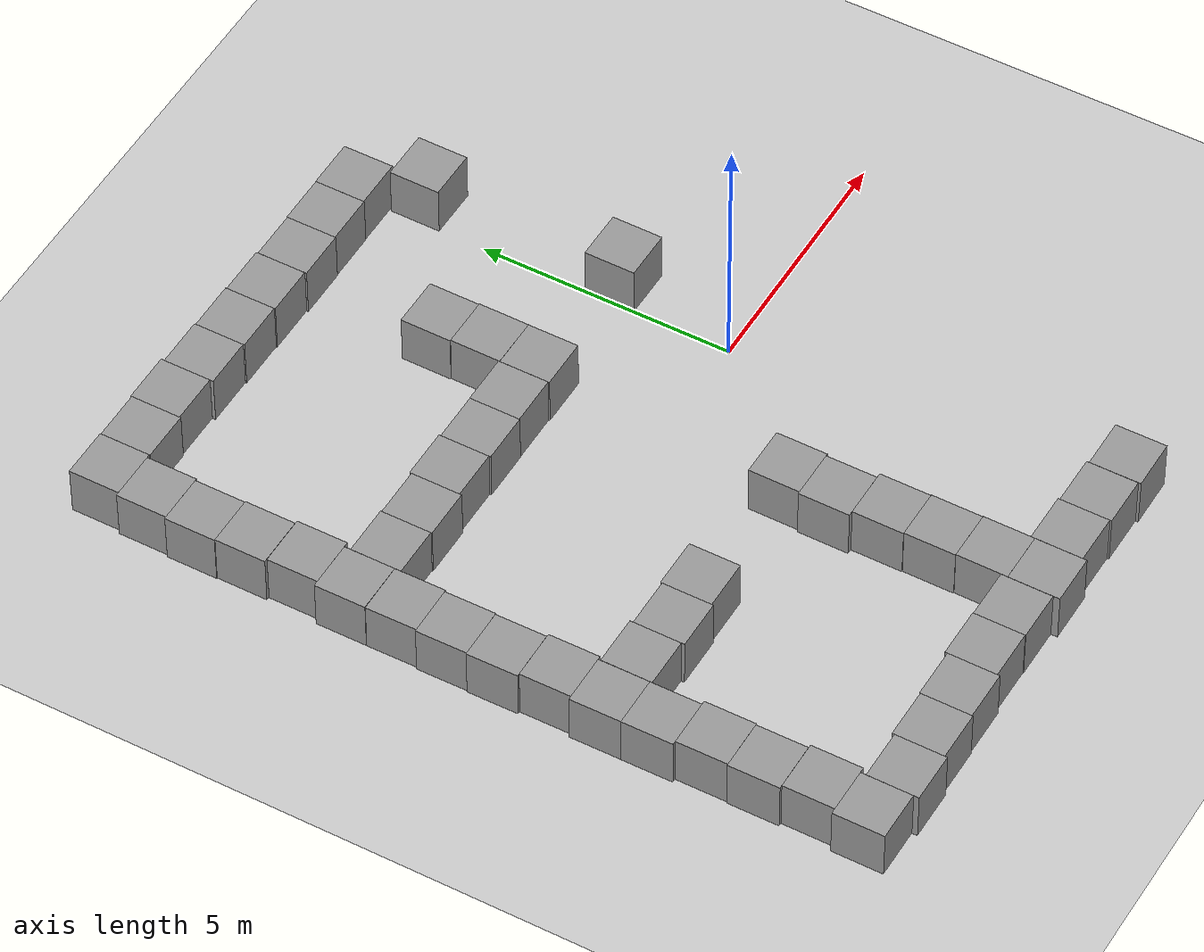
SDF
<sdf version="1.7">
 <world name="default">
  <model name="ground_plane">
   <static>1</static>
   <link name="link">
    <collision name="collision">
     <geometry><plane><normal>0 0 1</normal><size>100 100</size></plane></geometry>
     <surface>
      <contact><collide_bitmask>65535</collide_bitmask></contact>
      <friction><ode><mu>100</mu><mu2>50</mu2></ode></friction>
     </surface>
    </collision>
    <visual name="visual">
     <cast_shadows>0</cast_shadows>
     <geometry><plane><normal>0 0 1</normal><size>100 100</size></plane></geometry>
     <material>
      <script><uri>file://media/materials/scripts/gazebo.material</uri><name>Gazebo/Grey</name></script>
     </material>
    </visual>
   </link>
  </model>
  <model name="unit_box">
   <pose>-1.48346 -7.49248 0.499995 1e-05 -0 -0.004181</pose>
   <link name="link">
    <inertial>
     <mass>1</mass>
     <inertia>
      <ixx>0.166667</ixx>
      <ixy>0</ixy>
      <ixz>0</ixz>
      <iyy>0.166667</iyy>
      <iyz>0</iyz>
      <izz>0.166667</izz>
     </inertia>
    </inertial>
    <collision name="collision"><geometry><box><size>1 1 1</size></box></geometry></collision>
    <visual name="visual">
     <geometry><box><size>1 1 1</size></box></geometry>
     <material>
      <script><name>Gazebo/Grey</name><uri>file://media/materials/scripts/gazebo.material</uri></script>
     </material>
    </visual>
   </link>
  </model>
  <model name="unit_box_clone">
   <pose>-0.483452 -7.53028 0.499995 1e-05 0 -0.003876</pose>
   <link name="link">
    <inertial>
     <mass>1</mass>
     <inertia>
      <ixx>0.166667</ixx>
      <ixy>0</ixy>
      <ixz>0</ixz>
      <iyy>0.166667</iyy>
      <iyz>0</iyz>
      <izz>0.166667</izz>
     </inertia>
    </inertial>
    <collision name="collision"><geometry><box><size>1 1 1</size></box></geometry></collision>
    <visual name="visual">
     <geometry><box><size>1 1 1</size></box></geometry>
     <material>
      <script><name>Gazebo/Grey</name><uri>file://media/materials/scripts/gazebo.material</uri></script>
     </material>
    </visual>
   </link>
  </model>
  <model name="unit_box_clone_0">
   <pose>0.519092 -7.5801 0.499995 -0 -1e-05 0.001579</pose>
   <link name="link">
    <inertial>
     <mass>1</mass>
     <inertia>
      <ixx>0.166667</ixx>
      <ixy>0</ixy>
      <ixz>0</ixz>
      <iyy>0.166667</iyy>
      <iyz>0</iyz>
      <izz>0.166667</izz>
     </inertia>
    </inertial>
    <collision name="collision"><geometry><box><size>1 1 1</size></box></geometry></collision>
    <visual name="visual">
     <geometry><box><size>1 1 1</size></box></geometry>
     <material>
      <script><name>Gazebo/Grey</name><uri>file://media/materials/scripts/gazebo.material</uri></script>
     </material>
    </visual>
   </link>
  </model>
  <model name="unit_box_clone_24">
   <pose>-0.337977 7.47713 0.499995 -1e-05 -0 0.00065</pose>
   <link name="link">
    <inertial>
     <mass>1</mass>
     <inertia>
      <ixx>0.166667</ixx>
      <ixy>0</ixy>
      <ixz>0</ixz>
      <iyy>0.166667</iyy>
      <iyz>0</iyz>
      <izz>0.166667</izz>
     </inertia>
    </inertial>
    <collision name="collision"><geometry><box><size>1 1 1</size></box></geometry></collision>
    <visual name="visual">
     <geometry><box><size>1 1 1</size></box></geometry>
     <material>
      <script><name>Gazebo/Grey</name><uri>file://media/materials/scripts/gazebo.material</uri></script>
     </material>
    </visual>
   </link>
  </model>
  <model name="unit_box_clone_25">
   <pose>-1.33802 7.46853 0.5 0 -0 0.000596</pose>
   <link name="link">
    <inertial>
     <mass>1</mass>
     <inertia>
      <ixx>0.166667</ixx>
      <ixy>0</ixy>
      <ixz>0</ixz>
      <iyy>0.166667</iyy>
      <iyz>0</iyz>
      <izz>0.166667</izz>
     </inertia>
    </inertial>
    <collision name="collision"><geometry><box><size>1 1 1</size></box></geometry></collision>
    <visual name="visual">
     <geometry><box><size>1 1 1</size></box></geometry>
     <material>
      <script><name>Gazebo/Grey</name><uri>file://media/materials/scripts/gazebo.material</uri></script>
     </material>
    </visual>
   </link>
  </model>
  <model name="unit_box_clone_26">
   <pose>-2.33802 7.4561 0.5 0 -0 0.000584</pose>
   <link name="link">
    <inertial>
     <mass>1</mass>
     <inertia>
      <ixx>0.166667</ixx>
      <ixy>0</ixy>
      <ixz>0</ixz>
      <iyy>0.166667</iyy>
      <iyz>0</iyz>
      <izz>0.166667</izz>
     </inertia>
    </inertial>
    <collision name="collision"><geometry><box><size>1 1 1</size></box></geometry></collision>
    <visual name="visual">
     <geometry><box><size>1 1 1</size></box></geometry>
     <material>
      <script><name>Gazebo/Grey</name><uri>file://media/materials/scripts/gazebo.material</uri></script>
     </material>
    </visual>
   </link>
  </model>
  <model name="unit_box_clone_27">
   <pose>-3.33817 7.49082 0.5 0 -0 0.000326</pose>
   <link name="link">
    <inertial>
     <mass>1</mass>
     <inertia>
      <ixx>0.166667</ixx>
      <ixy>0</ixy>
      <ixz>0</ixz>
      <iyy>0.166667</iyy>
      <iyz>0</iyz>
      <izz>0.166667</izz>
     </inertia>
    </inertial>
    <collision name="collision"><geometry><box><size>1 1 1</size></box></geometry></collision>
    <visual name="visual">
     <geometry><box><size>1 1 1</size></box></geometry>
     <material>
      <script><name>Gazebo/Grey</name><uri>file://media/materials/scripts/gazebo.material</uri></script>
     </material>
    </visual>
   </link>
  </model>
  <model name="unit_box_clone_28">
   <pose>-4.33829 7.51118 0.5 0 -0 8.9e-05</pose>
   <link name="link">
    <inertial>
     <mass>1</mass>
     <inertia>
      <ixx>0.166667</ixx>
      <ixy>0</ixy>
      <ixz>0</ixz>
      <iyy>0.166667</iyy>
      <iyz>0</iyz>
      <izz>0.166667</izz>
     </inertia>
    </inertial>
    <collision name="collision"><geometry><box><size>1 1 1</size></box></geometry></collision>
    <visual name="visual">
     <geometry><box><size>1 1 1</size></box></geometry>
     <material>
      <script><name>Gazebo/Grey</name><uri>file://media/materials/scripts/gazebo.material</uri></script>
     </material>
    </visual>
   </link>
  </model>
  <model name="unit_box_clone_29">
   <pose>-5.3383 7.53597 0.499995 1e-05 0 6.8e-05</pose>
   <link name="link">
    <inertial>
     <mass>1</mass>
     <inertia>
      <ixx>0.166667</ixx>
      <ixy>0</ixy>
      <ixz>0</ixz>
      <iyy>0.166667</iyy>
      <iyz>0</iyz>
      <izz>0.166667</izz>
     </inertia>
    </inertial>
    <collision name="collision"><geometry><box><size>1 1 1</size></box></geometry></collision>
    <visual name="visual">
     <geometry><box><size>1 1 1</size></box></geometry>
     <material>
      <script><name>Gazebo/Grey</name><uri>file://media/materials/scripts/gazebo.material</uri></script>
     </material>
    </visual>
   </link>
  </model>
  <model name="unit_box_clone_30">
   <pose>-6.33833 7.60037 0.499995 1e-05 -0 1.4e-05</pose>
   <link name="link">
    <inertial>
     <mass>1</mass>
     <inertia>
      <ixx>0.166667</ixx>
      <ixy>0</ixy>
      <ixz>0</ixz>
      <iyy>0.166667</iyy>
      <iyz>0</iyz>
      <izz>0.166667</izz>
     </inertia>
    </inertial>
    <collision name="collision"><geometry><box><size>1 1 1</size></box></geometry></collision>
    <visual name="visual">
     <geometry><box><size>1 1 1</size></box></geometry>
     <material>
      <script><name>Gazebo/Grey</name><uri>file://media/materials/scripts/gazebo.material</uri></script>
     </material>
    </visual>
   </link>
  </model>
  <model name="unit_box_clone_31">
   <pose>-7.3384 7.57702 0.499995 0 -1e-05 -9.3e-05</pose>
   <link name="link">
    <inertial>
     <mass>1</mass>
     <inertia>
      <ixx>0.166667</ixx>
      <ixy>0</ixy>
      <ixz>0</ixz>
      <iyy>0.166667</iyy>
      <iyz>0</iyz>
      <izz>0.166667</izz>
     </inertia>
    </inertial>
    <collision name="collision"><geometry><box><size>1 1 1</size></box></geometry></collision>
    <visual name="visual">
     <geometry><box><size>1 1 1</size></box></geometry>
     <material>
      <script><name>Gazebo/Grey</name><uri>file://media/materials/scripts/gazebo.material</uri></script>
     </material>
    </visual>
   </link>
  </model>
  <model name="unit_box_clone_32">
   <pose>-8.33868 7.5929 0.499995 0 1e-05 -0.000708</pose>
   <link name="link">
    <inertial>
     <mass>1</mass>
     <inertia>
      <ixx>0.166667</ixx>
      <ixy>0</ixy>
      <ixz>0</ixz>
      <iyy>0.166667</iyy>
      <iyz>0</iyz>
      <izz>0.166667</izz>
     </inertia>
    </inertial>
    <collision name="collision"><geometry><box><size>1 1 1</size></box></geometry></collision>
    <visual name="visual">
     <geometry><box><size>1 1 1</size></box></geometry>
     <material>
      <script><name>Gazebo/Grey</name><uri>file://media/materials/scripts/gazebo.material</uri></script>
     </material>
    </visual>
   </link>
  </model>
  <model name="unit_box_clone_33">
   <pose>-8.40776 6.59292 0.499995 0 1e-05 -0.000748</pose>
   <link name="link">
    <inertial>
     <mass>1</mass>
     <inertia>
      <ixx>0.166667</ixx>
      <ixy>0</ixy>
      <ixz>0</ixz>
      <iyy>0.166667</iyy>
      <iyz>0</iyz>
      <izz>0.166667</izz>
     </inertia>
    </inertial>
    <collision name="collision"><geometry><box><size>1 1 1</size></box></geometry></collision>
    <visual name="visual">
     <geometry><box><size>1 1 1</size></box></geometry>
     <material>
      <script><name>Gazebo/Grey</name><uri>file://media/materials/scripts/gazebo.material</uri></script>
     </material>
    </visual>
   </link>
  </model>
  <model name="unit_box_clone_34">
   <pose>-8.44819 5.59252 0.5 -0 -0 -0.001683</pose>
   <link name="link">
    <inertial>
     <mass>1</mass>
     <inertia>
      <ixx>0.166667</ixx>
      <ixy>0</ixy>
      <ixz>0</ixz>
      <iyy>0.166667</iyy>
      <iyz>0</iyz>
      <izz>0.166667</izz>
     </inertia>
    </inertial>
    <collision name="collision"><geometry><box><size>1 1 1</size></box></geometry></collision>
    <visual name="visual">
     <geometry><box><size>1 1 1</size></box></geometry>
     <material>
      <script><name>Gazebo/Grey</name><uri>file://media/materials/scripts/gazebo.material</uri></script>
     </material>
    </visual>
   </link>
  </model>
  <model name="unit_box_clone_35">
   <pose>-8.43292 4.59249 0.499995 0 1e-05 -0.001692</pose>
   <link name="link">
    <inertial>
     <mass>1</mass>
     <inertia>
      <ixx>0.166667</ixx>
      <ixy>0</ixy>
      <ixz>0</ixz>
      <iyy>0.166667</iyy>
      <iyz>0</iyz>
      <izz>0.166667</izz>
     </inertia>
    </inertial>
    <collision name="collision"><geometry><box><size>1 1 1</size></box></geometry></collision>
    <visual name="visual">
     <geometry><box><size>1 1 1</size></box></geometry>
     <material>
      <script><name>Gazebo/Grey</name><uri>file://media/materials/scripts/gazebo.material</uri></script>
     </material>
    </visual>
   </link>
  </model>
  <model name="unit_box_clone_36">
   <pose>-8.37185 3.5869 0.499995 1e-05 -0 0.002115</pose>
   <link name="link">
    <inertial>
     <mass>1</mass>
     <inertia>
      <ixx>0.166667</ixx>
      <ixy>0</ixy>
      <ixz>0</ixz>
      <iyy>0.166667</iyy>
      <iyz>0</iyz>
      <izz>0.166667</izz>
     </inertia>
    </inertial>
    <collision name="collision"><geometry><box><size>1 1 1</size></box></geometry></collision>
    <visual name="visual">
     <geometry><box><size>1 1 1</size></box></geometry>
     <material>
      <script><name>Gazebo/Grey</name><uri>file://media/materials/scripts/gazebo.material</uri></script>
     </material>
    </visual>
   </link>
  </model>
  <model name="unit_box_clone_37">
   <pose>-8.4713 2.58632 0.499995 0 -1e-05 0.002251</pose>
   <link name="link">
    <inertial>
     <mass>1</mass>
     <inertia>
      <ixx>0.166667</ixx>
      <ixy>0</ixy>
      <ixz>0</ixz>
      <iyy>0.166667</iyy>
      <iyz>0</iyz>
      <izz>0.166667</izz>
     </inertia>
    </inertial>
    <collision name="collision"><geometry><box><size>1 1 1</size></box></geometry></collision>
    <visual name="visual">
     <geometry><box><size>1 1 1</size></box></geometry>
     <material>
      <script><name>Gazebo/Grey</name><uri>file://media/materials/scripts/gazebo.material</uri></script>
     </material>
    </visual>
   </link>
  </model>
  <model name="unit_box_clone_38">
   <pose>-8.46655 1.5814 0.499995 1e-05 -0 0.009421</pose>
   <link name="link">
    <inertial>
     <mass>1</mass>
     <inertia>
      <ixx>0.166667</ixx>
      <ixy>0</ixy>
      <ixz>0</ixz>
      <iyy>0.166667</iyy>
      <iyz>0</iyz>
      <izz>0.166667</izz>
     </inertia>
    </inertial>
    <collision name="collision"><geometry><box><size>1 1 1</size></box></geometry></collision>
    <visual name="visual">
     <geometry><box><size>1 1 1</size></box></geometry>
     <material>
      <script><name>Gazebo/Grey</name><uri>file://media/materials/scripts/gazebo.material</uri></script>
     </material>
    </visual>
   </link>
  </model>
  <model name="unit_box_clone_39">
   <pose>-8.49089 0.58107 0.499995 -1e-05 0 0.009286</pose>
   <link name="link">
    <inertial>
     <mass>1</mass>
     <inertia>
      <ixx>0.166667</ixx>
      <ixy>0</ixy>
      <ixz>0</ixz>
      <iyy>0.166667</iyy>
      <iyz>0</iyz>
      <izz>0.166667</izz>
     </inertia>
    </inertial>
    <collision name="collision"><geometry><box><size>1 1 1</size></box></geometry></collision>
    <visual name="visual">
     <geometry><box><size>1 1 1</size></box></geometry>
     <material>
      <script><name>Gazebo/Grey</name><uri>file://media/materials/scripts/gazebo.material</uri></script>
     </material>
    </visual>
   </link>
  </model>
  <model name="unit_box_clone_40">
   <pose>-8.50342 -0.419544 0.499995 1e-05 0 0.008373</pose>
   <link name="link">
    <inertial>
     <mass>1</mass>
     <inertia>
      <ixx>0.166667</ixx>
      <ixy>0</ixy>
      <ixz>0</ixz>
      <iyy>0.166667</iyy>
      <iyz>0</iyz>
      <izz>0.166667</izz>
     </inertia>
    </inertial>
    <collision name="collision"><geometry><box><size>1 1 1</size></box></geometry></collision>
    <visual name="visual">
     <geometry><box><size>1 1 1</size></box></geometry>
     <material>
      <script><name>Gazebo/Grey</name><uri>file://media/materials/scripts/gazebo.material</uri></script>
     </material>
    </visual>
   </link>
  </model>
  <model name="unit_box_clone_41">
   <pose>-8.44531 -1.42065 0.499995 0 1e-05 0.005312</pose>
   <link name="link">
    <inertial>
     <mass>1</mass>
     <inertia>
      <ixx>0.166667</ixx>
      <ixy>0</ixy>
      <ixz>0</ixz>
      <iyy>0.166667</iyy>
      <iyz>0</iyz>
      <izz>0.166667</izz>
     </inertia>
    </inertial>
    <collision name="collision"><geometry><box><size>1 1 1</size></box></geometry></collision>
    <visual name="visual">
     <geometry><box><size>1 1 1</size></box></geometry>
     <material>
      <script><name>Gazebo/Grey</name><uri>file://media/materials/scripts/gazebo.material</uri></script>
     </material>
    </visual>
   </link>
  </model>
  <model name="unit_box_clone_42">
   <pose>-8.50894 -2.42112 0.499995 0 -1e-05 0.005258</pose>
   <link name="link">
    <inertial>
     <mass>1</mass>
     <inertia>
      <ixx>0.166667</ixx>
      <ixy>0</ixy>
      <ixz>0</ixz>
      <iyy>0.166667</iyy>
      <iyz>0</iyz>
      <izz>0.166667</izz>
     </inertia>
    </inertial>
    <collision name="collision"><geometry><box><size>1 1 1</size></box></geometry></collision>
    <visual name="visual">
     <geometry><box><size>1 1 1</size></box></geometry>
     <material>
      <script><name>Gazebo/Grey</name><uri>file://media/materials/scripts/gazebo.material</uri></script>
     </material>
    </visual>
   </link>
  </model>
  <model name="unit_box_clone_43">
   <pose>-8.50524 -3.42113 0.499995 -0 -1e-05 0.005234</pose>
   <link name="link">
    <inertial>
     <mass>1</mass>
     <inertia>
      <ixx>0.166667</ixx>
      <ixy>0</ixy>
      <ixz>0</ixz>
      <iyy>0.166667</iyy>
      <iyz>0</iyz>
      <izz>0.166667</izz>
     </inertia>
    </inertial>
    <collision name="collision"><geometry><box><size>1 1 1</size></box></geometry></collision>
    <visual name="visual">
     <geometry><box><size>1 1 1</size></box></geometry>
     <material>
      <script><name>Gazebo/Grey</name><uri>file://media/materials/scripts/gazebo.material</uri></script>
     </material>
    </visual>
   </link>
  </model>
  <model name="unit_box_clone_44">
   <pose>-8.42681 -4.42082 0.499995 -0 -1e-05 0.005078</pose>
   <link name="link">
    <inertial>
     <mass>1</mass>
     <inertia>
      <ixx>0.166667</ixx>
      <ixy>0</ixy>
      <ixz>0</ixz>
      <iyy>0.166667</iyy>
      <iyz>0</iyz>
      <izz>0.166667</izz>
     </inertia>
    </inertial>
    <collision name="collision"><geometry><box><size>1 1 1</size></box></geometry></collision>
    <visual name="visual">
     <geometry><box><size>1 1 1</size></box></geometry>
     <material>
      <script><name>Gazebo/Grey</name><uri>file://media/materials/scripts/gazebo.material</uri></script>
     </material>
    </visual>
   </link>
  </model>
  <model name="unit_box_clone_45">
   <pose>-8.44626 -5.42149 0.499995 0 -1e-05 0.00396</pose>
   <link name="link">
    <inertial>
     <mass>1</mass>
     <inertia>
      <ixx>0.166667</ixx>
      <ixy>0</ixy>
      <ixz>0</ixz>
      <iyy>0.166667</iyy>
      <iyz>0</iyz>
      <izz>0.166667</izz>
     </inertia>
    </inertial>
    <collision name="collision"><geometry><box><size>1 1 1</size></box></geometry></collision>
    <visual name="visual">
     <geometry><box><size>1 1 1</size></box></geometry>
     <material>
      <script><name>Gazebo/Grey</name><uri>file://media/materials/scripts/gazebo.material</uri></script>
     </material>
    </visual>
   </link>
  </model>
  <model name="unit_box_clone_46">
   <pose>-8.38158 -6.42358 0.499995 -0 -1e-05 -0.000724</pose>
   <link name="link">
    <inertial>
     <mass>1</mass>
     <inertia>
      <ixx>0.166667</ixx>
      <ixy>0</ixy>
      <ixz>0</ixz>
      <iyy>0.166667</iyy>
      <iyz>0</iyz>
      <izz>0.166667</izz>
     </inertia>
    </inertial>
    <collision name="collision"><geometry><box><size>1 1 1</size></box></geometry></collision>
    <visual name="visual">
     <geometry><box><size>1 1 1</size></box></geometry>
     <material>
      <script><name>Gazebo/Grey</name><uri>file://media/materials/scripts/gazebo.material</uri></script>
     </material>
    </visual>
   </link>
  </model>
  <model name="unit_box_clone_47">
   <pose>-8.48809 -7.4237 0.499995 -1e-05 -0 -0.001166</pose>
   <link name="link">
    <inertial>
     <mass>1</mass>
     <inertia>
      <ixx>0.166667</ixx>
      <ixy>0</ixy>
      <ixz>0</ixz>
      <iyy>0.166667</iyy>
      <iyz>0</iyz>
      <izz>0.166667</izz>
     </inertia>
    </inertial>
    <collision name="collision"><geometry><box><size>1 1 1</size></box></geometry></collision>
    <visual name="visual">
     <geometry><box><size>1 1 1</size></box></geometry>
     <material>
      <script><name>Gazebo/Grey</name><uri>file://media/materials/scripts/gazebo.material</uri></script>
     </material>
    </visual>
   </link>
  </model>
  <model name="unit_box_clone_48">
   <pose>-7.48748 -7.52979 0.5 0 0 -0.003001</pose>
   <link name="link">
    <inertial>
     <mass>1</mass>
     <inertia>
      <ixx>0.166667</ixx>
      <ixy>0</ixy>
      <ixz>0</ixz>
      <iyy>0.166667</iyy>
      <iyz>0</iyz>
      <izz>0.166667</izz>
     </inertia>
    </inertial>
    <collision name="collision"><geometry><box><size>1 1 1</size></box></geometry></collision>
    <visual name="visual">
     <geometry><box><size>1 1 1</size></box></geometry>
     <material>
      <script><name>Gazebo/Grey</name><uri>file://media/materials/scripts/gazebo.material</uri></script>
     </material>
    </visual>
   </link>
  </model>
  <model name="unit_box_clone_49">
   <pose>-6.48721 -7.48332 0.499995 1e-05 -0 -0.003242</pose>
   <link name="link">
    <inertial>
     <mass>1</mass>
     <inertia>
      <ixx>0.166667</ixx>
      <ixy>0</ixy>
      <ixz>0</ixz>
      <iyy>0.166667</iyy>
      <iyz>0</iyz>
      <izz>0.166667</izz>
     </inertia>
    </inertial>
    <collision name="collision"><geometry><box><size>1 1 1</size></box></geometry></collision>
    <visual name="visual">
     <geometry><box><size>1 1 1</size></box></geometry>
     <material>
      <script><name>Gazebo/Grey</name><uri>file://media/materials/scripts/gazebo.material</uri></script>
     </material>
    </visual>
   </link>
  </model>
  <model name="unit_box_clone_50">
   <pose>-5.48713 -7.4684 0.499995 1e-05 -0 -0.003279</pose>
   <link name="link">
    <inertial>
     <mass>1</mass>
     <inertia>
      <ixx>0.166667</ixx>
      <ixy>0</ixy>
      <ixz>0</ixz>
      <iyy>0.166667</iyy>
      <iyz>0</iyz>
      <izz>0.166667</izz>
     </inertia>
    </inertial>
    <collision name="collision"><geometry><box><size>1 1 1</size></box></geometry></collision>
    <visual name="visual">
     <geometry><box><size>1 1 1</size></box></geometry>
     <material>
      <script><name>Gazebo/Grey</name><uri>file://media/materials/scripts/gazebo.material</uri></script>
     </material>
    </visual>
   </link>
  </model>
  <model name="unit_box_clone_51">
   <pose>-4.48697 -7.4217 0.499995 -1e-05 -0 -0.003279</pose>
   <link name="link">
    <inertial>
     <mass>1</mass>
     <inertia>
      <ixx>0.166667</ixx>
      <ixy>0</ixy>
      <ixz>0</ixz>
      <iyy>0.166667</iyy>
      <iyz>0</iyz>
      <izz>0.166667</izz>
     </inertia>
    </inertial>
    <collision name="collision"><geometry><box><size>1 1 1</size></box></geometry></collision>
    <visual name="visual">
     <geometry><box><size>1 1 1</size></box></geometry>
     <material>
      <script><name>Gazebo/Grey</name><uri>file://media/materials/scripts/gazebo.material</uri></script>
     </material>
    </visual>
   </link>
  </model>
  <model name="unit_box_clone_52">
   <pose>-3.48641 -7.43676 0.499995 -1e-05 -0 -0.003485</pose>
   <link name="link">
    <inertial>
     <mass>1</mass>
     <inertia>
      <ixx>0.166667</ixx>
      <ixy>0</ixy>
      <ixz>0</ixz>
      <iyy>0.166667</iyy>
      <iyz>0</iyz>
      <izz>0.166667</izz>
     </inertia>
    </inertial>
    <collision name="collision"><geometry><box><size>1 1 1</size></box></geometry></collision>
    <visual name="visual">
     <geometry><box><size>1 1 1</size></box></geometry>
     <material>
      <script><name>Gazebo/Grey</name><uri>file://media/materials/scripts/gazebo.material</uri></script>
     </material>
    </visual>
   </link>
  </model>
  <model name="unit_box_clone_53">
   <pose>-2.48441 -7.56762 0.499995 -1e-05 -0 -0.002841</pose>
   <link name="link">
    <inertial>
     <mass>1</mass>
     <inertia>
      <ixx>0.166667</ixx>
      <ixy>0</ixy>
      <ixz>0</ixz>
      <iyy>0.166667</iyy>
      <iyz>0</iyz>
      <izz>0.166667</izz>
     </inertia>
    </inertial>
    <collision name="collision"><geometry><box><size>1 1 1</size></box></geometry></collision>
    <visual name="visual">
     <geometry><box><size>1 1 1</size></box></geometry>
     <material>
      <script><name>Gazebo/Grey</name><uri>file://media/materials/scripts/gazebo.material</uri></script>
     </material>
    </visual>
   </link>
  </model>
  <model name="unit_box_0">
   <pose>-2.47958 -6.56694 0.499995 1e-05 -0 -0.004236</pose>
   <link name="link">
    <inertial>
     <mass>1</mass>
     <inertia>
      <ixx>0.166667</ixx>
      <ixy>0</ixy>
      <ixz>0</ixz>
      <iyy>0.166667</iyy>
      <iyz>0</iyz>
      <izz>0.166667</izz>
     </inertia>
    </inertial>
    <collision name="collision"><geometry><box><size>1 1 1</size></box></geometry></collision>
    <visual name="visual">
     <geometry><box><size>1 1 1</size></box></geometry>
     <material>
      <script><name>Gazebo/Grey</name><uri>file://media/materials/scripts/gazebo.material</uri></script>
     </material>
    </visual>
   </link>
  </model>
  <model name="unit_box_clone_10">
   <pose>-2.48697 -5.56654 0.499995 0 -1e-05 -0.003532</pose>
   <link name="link">
    <inertial>
     <mass>1</mass>
     <inertia>
      <ixx>0.166667</ixx>
      <ixy>0</ixy>
      <ixz>0</ixz>
      <iyy>0.166667</iyy>
      <iyz>0</iyz>
      <izz>0.166667</izz>
     </inertia>
    </inertial>
    <collision name="collision"><geometry><box><size>1 1 1</size></box></geometry></collision>
    <visual name="visual">
     <geometry><box><size>1 1 1</size></box></geometry>
     <material>
      <script><name>Gazebo/Grey</name><uri>file://media/materials/scripts/gazebo.material</uri></script>
     </material>
    </visual>
   </link>
  </model>
  <model name="unit_box_clone_11">
   <pose>-2.49776 -4.56632 0.499995 0 -1e-05 -0.003193</pose>
   <link name="link">
    <inertial>
     <mass>1</mass>
     <inertia>
      <ixx>0.166667</ixx>
      <ixy>0</ixy>
      <ixz>0</ixz>
      <iyy>0.166667</iyy>
      <iyz>0</iyz>
      <izz>0.166667</izz>
     </inertia>
    </inertial>
    <collision name="collision"><geometry><box><size>1 1 1</size></box></geometry></collision>
    <visual name="visual">
     <geometry><box><size>1 1 1</size></box></geometry>
     <material>
      <script><name>Gazebo/Grey</name><uri>file://media/materials/scripts/gazebo.material</uri></script>
     </material>
    </visual>
   </link>
  </model>
  <model name="unit_box_clone_12">
   <pose>-7.50591 -2.4638 0.499995 -1e-05 -0 -0.000847</pose>
   <link name="link">
    <inertial>
     <mass>1</mass>
     <inertia>
      <ixx>0.166667</ixx>
      <ixy>0</ixy>
      <ixz>0</ixz>
      <iyy>0.166667</iyy>
      <iyz>0</iyz>
      <izz>0.166667</izz>
     </inertia>
    </inertial>
    <collision name="collision"><geometry><box><size>1 1 1</size></box></geometry></collision>
    <visual name="visual">
     <geometry><box><size>1 1 1</size></box></geometry>
     <material>
      <script><name>Gazebo/Grey</name><uri>file://media/materials/scripts/gazebo.material</uri></script>
     </material>
    </visual>
   </link>
  </model>
  <model name="unit_box_clone_13">
   <pose>-6.50583 -2.52671 0.5 0 0 -0.001139</pose>
   <link name="link">
    <inertial>
     <mass>1</mass>
     <inertia>
      <ixx>0.166667</ixx>
      <ixy>0</ixy>
      <ixz>0</ixz>
      <iyy>0.166667</iyy>
      <iyz>0</iyz>
      <izz>0.166667</izz>
     </inertia>
    </inertial>
    <collision name="collision"><geometry><box><size>1 1 1</size></box></geometry></collision>
    <visual name="visual">
     <geometry><box><size>1 1 1</size></box></geometry>
     <material>
      <script><name>Gazebo/Grey</name><uri>file://media/materials/scripts/gazebo.material</uri></script>
     </material>
    </visual>
   </link>
  </model>
  <model name="unit_box_clone_54">
   <pose>-2.58935 -3.56579 0.499995 -0 1e-05 -0.003501</pose>
   <link name="link">
    <inertial>
     <mass>1</mass>
     <inertia>
      <ixx>0.166667</ixx>
      <ixy>0</ixy>
      <ixz>0</ixz>
      <iyy>0.166667</iyy>
      <iyz>0</iyz>
      <izz>0.166667</izz>
     </inertia>
    </inertial>
    <collision name="collision"><geometry><box><size>1 1 1</size></box></geometry></collision>
    <visual name="visual">
     <geometry><box><size>1 1 1</size></box></geometry>
     <material>
      <script><name>Gazebo/Grey</name><uri>file://media/materials/scripts/gazebo.material</uri></script>
     </material>
    </visual>
   </link>
  </model>
  <model name="unit_box_clone_55">
   <pose>-2.54254 -2.56583 0.5 0 -0 -0.003565</pose>
   <link name="link">
    <inertial>
     <mass>1</mass>
     <inertia>
      <ixx>0.166667</ixx>
      <ixy>0</ixy>
      <ixz>0</ixz>
      <iyy>0.166667</iyy>
      <iyz>0</iyz>
      <izz>0.166667</izz>
     </inertia>
    </inertial>
    <collision name="collision"><geometry><box><size>1 1 1</size></box></geometry></collision>
    <visual name="visual">
     <geometry><box><size>1 1 1</size></box></geometry>
     <material>
      <script><name>Gazebo/Grey</name><uri>file://media/materials/scripts/gazebo.material</uri></script>
     </material>
    </visual>
   </link>
  </model>
  <model name="unit_box_clone_56">
   <pose>-5.50578 -2.49302 0.5 -0 -0 -0.001165</pose>
   <link name="link">
    <inertial>
     <mass>1</mass>
     <inertia>
      <ixx>0.166667</ixx>
      <ixy>0</ixy>
      <ixz>0</ixz>
      <iyy>0.166667</iyy>
      <iyz>0</iyz>
      <izz>0.166667</izz>
     </inertia>
    </inertial>
    <collision name="collision"><geometry><box><size>1 1 1</size></box></geometry></collision>
    <visual name="visual">
     <geometry><box><size>1 1 1</size></box></geometry>
     <material>
      <script><name>Gazebo/Grey</name><uri>file://media/materials/scripts/gazebo.material</uri></script>
     </material>
    </visual>
   </link>
  </model>
  <model name="unit_box_clone_57">
   <pose>-7.47026 2.46496 0.499995 0 1e-05 0.000256</pose>
   <link name="link">
    <inertial>
     <mass>1</mass>
     <inertia>
      <ixx>0.166667</ixx>
      <ixy>0</ixy>
      <ixz>0</ixz>
      <iyy>0.166667</iyy>
      <iyz>0</iyz>
      <izz>0.166667</izz>
     </inertia>
    </inertial>
    <collision name="collision"><geometry><box><size>1 1 1</size></box></geometry></collision>
    <visual name="visual">
     <geometry><box><size>1 1 1</size></box></geometry>
     <material>
      <script><name>Gazebo/Grey</name><uri>file://media/materials/scripts/gazebo.material</uri></script>
     </material>
    </visual>
   </link>
  </model>
  <model name="unit_box_clone_58">
   <pose>-6.47022 2.44267 0.499995 0 1e-05 0.000209</pose>
   <link name="link">
    <inertial>
     <mass>1</mass>
     <inertia>
      <ixx>0.166667</ixx>
      <ixy>0</ixy>
      <ixz>0</ixz>
      <iyy>0.166667</iyy>
      <iyz>0</iyz>
      <izz>0.166667</izz>
     </inertia>
    </inertial>
    <collision name="collision"><geometry><box><size>1 1 1</size></box></geometry></collision>
    <visual name="visual">
     <geometry><box><size>1 1 1</size></box></geometry>
     <material>
      <script><name>Gazebo/Grey</name><uri>file://media/materials/scripts/gazebo.material</uri></script>
     </material>
    </visual>
   </link>
  </model>
  <model name="unit_box_clone_59">
   <pose>-5.47023 2.48317 0.499995 0 1e-05 0.000209</pose>
   <link name="link">
    <inertial>
     <mass>1</mass>
     <inertia>
      <ixx>0.166667</ixx>
      <ixy>0</ixy>
      <ixz>0</ixz>
      <iyy>0.166667</iyy>
      <iyz>0</iyz>
      <izz>0.166667</izz>
     </inertia>
    </inertial>
    <collision name="collision"><geometry><box><size>1 1 1</size></box></geometry></collision>
    <visual name="visual">
     <geometry><box><size>1 1 1</size></box></geometry>
     <material>
      <script><name>Gazebo/Grey</name><uri>file://media/materials/scripts/gazebo.material</uri></script>
     </material>
    </visual>
   </link>
  </model>
  <model name="unit_box_clone_60">
   <pose>-4.47014 2.44971 0.499995 -0 1e-05 5.6e-05</pose>
   <link name="link">
    <inertial>
     <mass>1</mass>
     <inertia>
      <ixx>0.166667</ixx>
      <ixy>0</ixy>
      <ixz>0</ixz>
      <iyy>0.166667</iyy>
      <iyz>0</iyz>
      <izz>0.166667</izz>
     </inertia>
    </inertial>
    <collision name="collision"><geometry><box><size>1 1 1</size></box></geometry></collision>
    <visual name="visual">
     <geometry><box><size>1 1 1</size></box></geometry>
     <material>
      <script><name>Gazebo/Grey</name><uri>file://media/materials/scripts/gazebo.material</uri></script>
     </material>
    </visual>
   </link>
  </model>
  <model name="unit_box_clone_61">
   <pose>-3.47009 2.4573 0.499995 1e-05 -0 -3.4e-05</pose>
   <link name="link">
    <inertial>
     <mass>1</mass>
     <inertia>
      <ixx>0.166667</ixx>
      <ixy>0</ixy>
      <ixz>0</ixz>
      <iyy>0.166667</iyy>
      <iyz>0</iyz>
      <izz>0.166667</izz>
     </inertia>
    </inertial>
    <collision name="collision"><geometry><box><size>1 1 1</size></box></geometry></collision>
    <visual name="visual">
     <geometry><box><size>1 1 1</size></box></geometry>
     <material>
      <script><name>Gazebo/Grey</name><uri>file://media/materials/scripts/gazebo.material</uri></script>
     </material>
    </visual>
   </link>
  </model>
  <model name="unit_box_clone_62">
   <pose>-2.46974 2.43367 0.499995 -1e-05 0 -0.000763</pose>
   <link name="link">
    <inertial>
     <mass>1</mass>
     <inertia>
      <ixx>0.166667</ixx>
      <ixy>0</ixy>
      <ixz>0</ixz>
      <iyy>0.166667</iyy>
      <iyz>0</iyz>
      <izz>0.166667</izz>
     </inertia>
    </inertial>
    <collision name="collision"><geometry><box><size>1 1 1</size></box></geometry></collision>
    <visual name="visual">
     <geometry><box><size>1 1 1</size></box></geometry>
     <material>
      <script><name>Gazebo/Grey</name><uri>file://media/materials/scripts/gazebo.material</uri></script>
     </material>
    </visual>
   </link>
  </model>
  <model name="unit_box_clone_63">
   <pose>-2.46473 3.4355 0.499995 1e-05 -0 -0.004451</pose>
   <link name="link">
    <inertial>
     <mass>1</mass>
     <inertia>
      <ixx>0.166667</ixx>
      <ixy>0</ixy>
      <ixz>0</ixz>
      <iyy>0.166667</iyy>
      <iyz>0</iyz>
      <izz>0.166667</izz>
     </inertia>
    </inertial>
    <collision name="collision"><geometry><box><size>1 1 1</size></box></geometry></collision>
    <visual name="visual">
     <geometry><box><size>1 1 1</size></box></geometry>
     <material>
      <script><name>Gazebo/Grey</name><uri>file://media/materials/scripts/gazebo.material</uri></script>
     </material>
    </visual>
   </link>
  </model>
  <model name="unit_box_clone_64">
   <pose>-2.47623 4.43564 0.499995 1e-05 -0 -0.0046</pose>
   <link name="link">
    <inertial>
     <mass>1</mass>
     <inertia>
      <ixx>0.166667</ixx>
      <ixy>0</ixy>
      <ixz>0</ixz>
      <iyy>0.166667</iyy>
      <iyz>0</iyz>
      <izz>0.166667</izz>
     </inertia>
    </inertial>
    <collision name="collision"><geometry><box><size>1 1 1</size></box></geometry></collision>
    <visual name="visual">
     <geometry><box><size>1 1 1</size></box></geometry>
     <material>
      <script><name>Gazebo/Grey</name><uri>file://media/materials/scripts/gazebo.material</uri></script>
     </material>
    </visual>
   </link>
  </model>
  <model name="unit_box_clone_73">
   <pose>0.520905 2.4344 0.5 0 0 -0.005704</pose>
   <link name="link">
    <inertial>
     <mass>1</mass>
     <inertia>
      <ixx>0.166667</ixx>
      <ixy>0</ixy>
      <ixz>0</ixz>
      <iyy>0.166667</iyy>
      <iyz>0</iyz>
      <izz>0.166667</izz>
     </inertia>
    </inertial>
    <collision name="collision"><geometry><box><size>1 1 1</size></box></geometry></collision>
    <visual name="visual">
     <geometry><box><size>1 1 1</size></box></geometry>
     <material>
      <script><name>Gazebo/Grey</name><uri>file://media/materials/scripts/gazebo.material</uri></script>
     </material>
    </visual>
   </link>
  </model>
  <model name="unit_box_clone_77">
   <pose>0.504612 6.43471 0.499995 -1e-05 -0 -0.005501</pose>
   <link name="link">
    <inertial>
     <mass>1</mass>
     <inertia>
      <ixx>0.166667</ixx>
      <ixy>0</ixy>
      <ixz>0</ixz>
      <iyy>0.166667</iyy>
      <iyz>0</iyz>
      <izz>0.166667</izz>
     </inertia>
    </inertial>
    <collision name="collision"><geometry><box><size>1 1 1</size></box></geometry></collision>
    <visual name="visual">
     <geometry><box><size>1 1 1</size></box></geometry>
     <material>
      <script><name>Gazebo/Grey</name><uri>file://media/materials/scripts/gazebo.material</uri></script>
     </material>
    </visual>
   </link>
  </model>
 </world>
</sdf>
